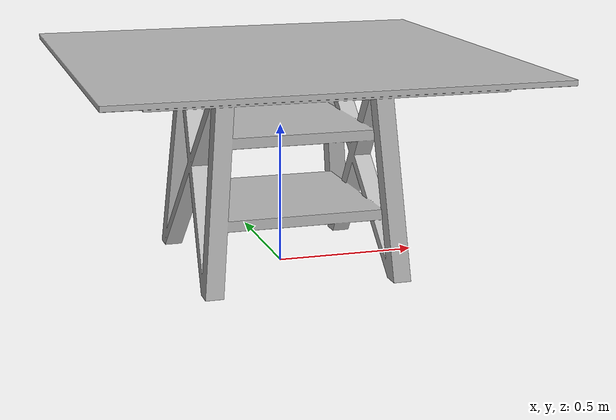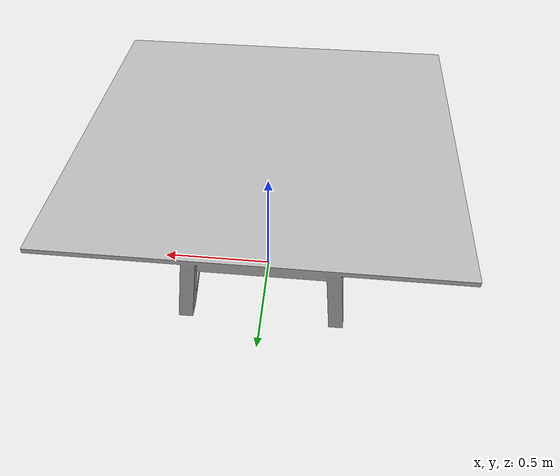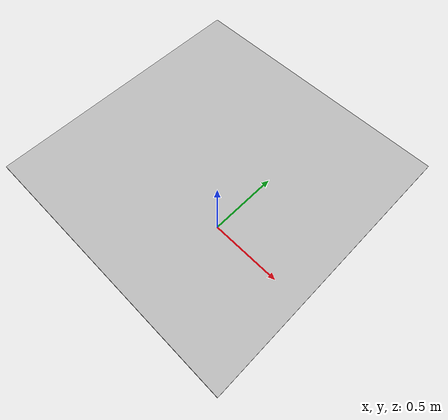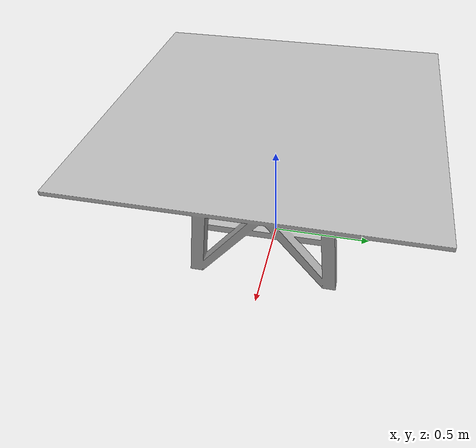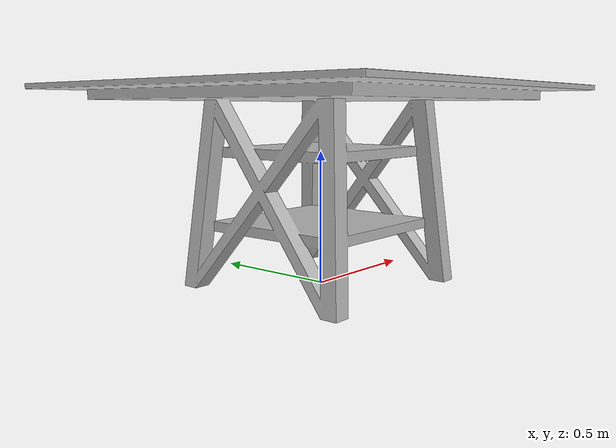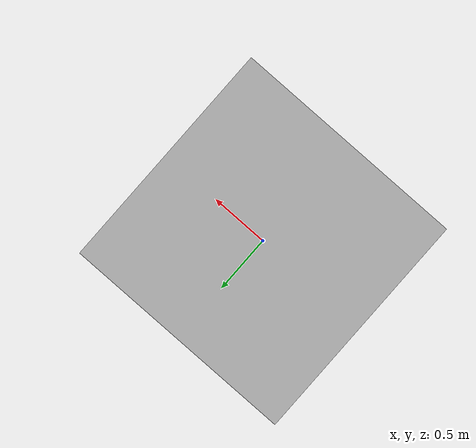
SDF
<?xml version='1.0'?>
<sdf version='1.4'>
  <model name='525'>
    <pose>0 0 0 0 0 0</pose>
    <static>true</static>
    <link name='link'>
      <collision name='collision'>
        <pose>0 0 0 0 0 0</pose>
        <geometry>
          <box>
            <size>1.5 1.5 2</size>
          </box>
        </geometry>
      </collision>
      <visual name='visual'>
        <pose>0 0 0 0 0 0</pose>
        <geometry>
          <mesh><uri>model://525/525.dae</uri></mesh>
        </geometry>
      </visual>
    </link>
  </model>
</sdf>
